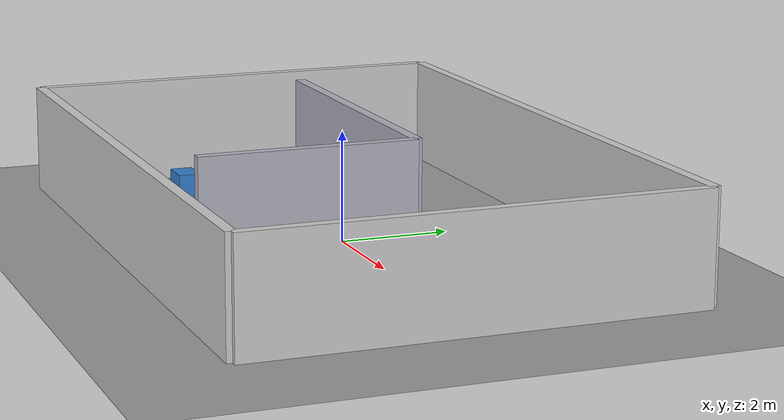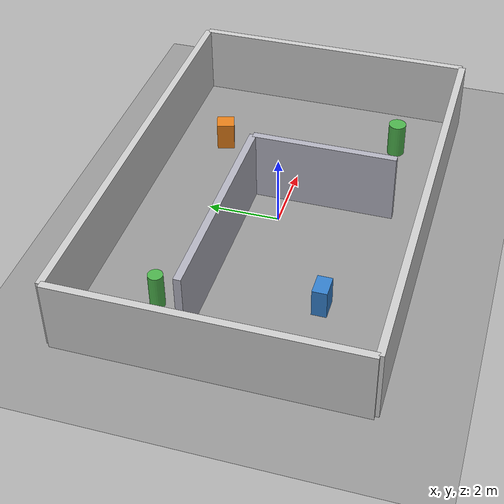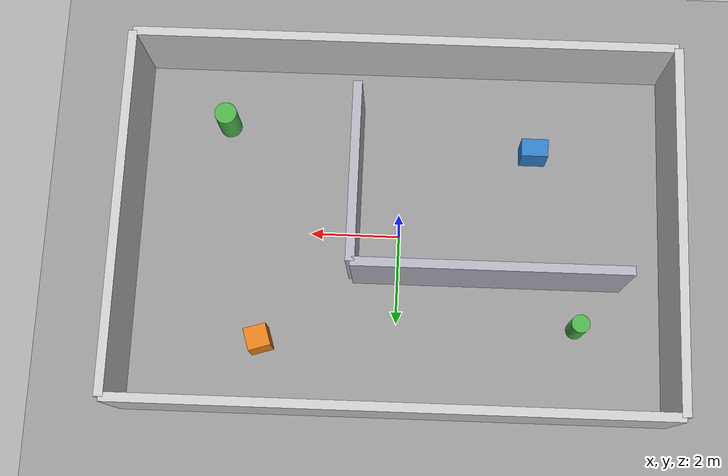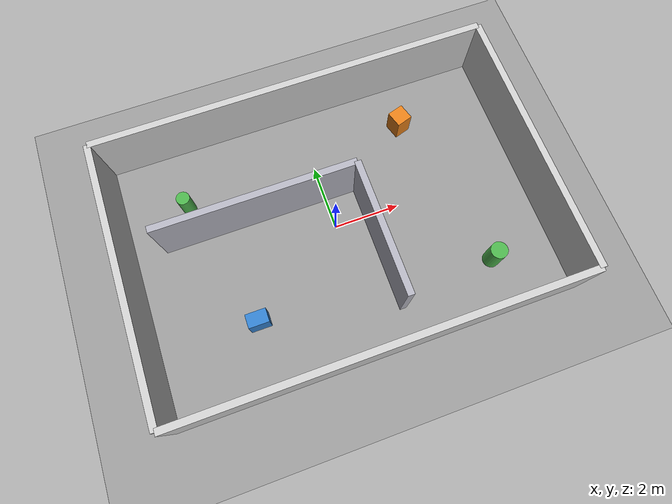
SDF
<?xml version="1.0" ?>
<sdf version="1.9">
  <world name="agv_warehouse">

    <physics name="1ms" type="ignored">
      <max_step_size>0.001</max_step_size>
      <real_time_factor>1.0</real_time_factor>
    </physics>

    <plugin filename="gz-sim-physics-system" name="gz::sim::systems::Physics"/>
    <plugin filename="gz-sim-sensors-system" name="gz::sim::systems::Sensors">
      <render_engine>ogre2</render_engine>
    </plugin>
    <plugin filename="gz-sim-scene-broadcaster-system" name="gz::sim::systems::SceneBroadcaster"/>
    <plugin filename="gz-sim-user-commands-system" name="gz::sim::systems::UserCommands"/>
    <plugin filename="gz-sim-imu-system" name="gz::sim::systems::Imu"/>

    <light type="directional" name="sun">
      <cast_shadows>true</cast_shadows>
      <pose>0 0 10 0 0 0</pose>
      <diffuse>0.9 0.9 0.9 1</diffuse>
      <specular>0.2 0.2 0.2 1</specular>
      <direction>-0.4 0.2 -0.9</direction>
    </light>

    <model name="ground_plane">
      <static>true</static>
      <link name="link">
        <collision name="collision">
          <geometry><plane><normal>0 0 1</normal><size>40 40</size></plane></geometry>
          <surface><friction><ode><mu>0.9</mu><mu2>0.9</mu2></ode></friction></surface>
        </collision>
        <visual name="visual">
          <geometry><plane><normal>0 0 1</normal><size>40 40</size></plane></geometry>
          <material><ambient>0.6 0.6 0.6 1</ambient><diffuse>0.6 0.6 0.6 1</diffuse></material>
        </visual>
      </link>
    </model>

    <!-- ===== Reusable wall macro-ish: each wall is a static box ===== -->

    <!-- Outer perimeter: 12m x 8m room -->
    <model name="wall_outer_north"><static>true</static>
      <pose>0 4 1 0 0 0</pose>
      <link name="link">
        <collision name="c"><geometry><box><size>12 0.2 2</size></box></geometry></collision>
        <visual name="v"><geometry><box><size>12 0.2 2</size></box></geometry>
          <material><ambient>0.8 0.8 0.8 1</ambient></material></visual>
      </link>
    </model>
    <model name="wall_outer_south"><static>true</static>
      <pose>0 -4 1 0 0 0</pose>
      <link name="link">
        <collision name="c"><geometry><box><size>12 0.2 2</size></box></geometry></collision>
        <visual name="v"><geometry><box><size>12 0.2 2</size></box></geometry>
          <material><ambient>0.8 0.8 0.8 1</ambient></material></visual>
      </link>
    </model>
    <model name="wall_outer_east"><static>true</static>
      <pose>6 0 1 0 0 1.5708</pose>
      <link name="link">
        <collision name="c"><geometry><box><size>8 0.2 2</size></box></geometry></collision>
        <visual name="v"><geometry><box><size>8 0.2 2</size></box></geometry>
          <material><ambient>0.8 0.8 0.8 1</ambient></material></visual>
      </link>
    </model>
    <model name="wall_outer_west"><static>true</static>
      <pose>-6 0 1 0 0 1.5708</pose>
      <link name="link">
        <collision name="c"><geometry><box><size>8 0.2 2</size></box></geometry></collision>
        <visual name="v"><geometry><box><size>8 0.2 2</size></box></geometry>
          <material><ambient>0.8 0.8 0.8 1</ambient></material></visual>
      </link>
    </model>

    <!-- Inner dividing wall creating a corridor + turn (L-shape) -->
    <model name="wall_inner_1"><static>true</static>
      <pose>-2 1 1 0 0 0</pose>
      <link name="link">
        <collision name="c"><geometry><box><size>6 0.2 2</size></box></geometry></collision>
        <visual name="v"><geometry><box><size>6 0.2 2</size></box></geometry>
          <material><ambient>0.7 0.7 0.75 1</ambient></material></visual>
      </link>
    </model>
    <model name="wall_inner_2"><static>true</static>
      <pose>1 -1 1 0 0 1.5708</pose>
      <link name="link">
        <collision name="c"><geometry><box><size>4 0.2 2</size></box></geometry></collision>
        <visual name="v"><geometry><box><size>4 0.2 2</size></box></geometry>
          <material><ambient>0.7 0.7 0.75 1</ambient></material></visual>
      </link>
    </model>

    <!-- Freestanding obstacles for LiDAR returns / loop-closure landmarks -->
    <model name="box_obstacle_1"><static>true</static>
      <pose>3 2.5 0.4 0 0 0.3</pose>
      <link name="link">
        <collision name="c"><geometry><box><size>0.5 0.5 0.8</size></box></geometry></collision>
        <visual name="v"><geometry><box><size>0.5 0.5 0.8</size></box></geometry>
          <material><ambient>0.9 0.5 0.1 1</ambient></material></visual>
      </link>
    </model>
    <model name="box_obstacle_2"><static>true</static>
      <pose>-3 -2 0.4 0 0 0</pose>
      <link name="link">
        <collision name="c"><geometry><box><size>0.6 0.4 0.8</size></box></geometry></collision>
        <visual name="v"><geometry><box><size>0.6 0.4 0.8</size></box></geometry>
          <material><ambient>0.2 0.5 0.8 1</ambient></material></visual>
      </link>
    </model>
    <model name="cylinder_obstacle_1"><static>true</static>
      <pose>4 -2.5 0.5 0 0 0</pose>
      <link name="link">
        <collision name="c"><geometry><cylinder><radius>0.25</radius><length>1.0</length></cylinder></geometry></collision>
        <visual name="v"><geometry><cylinder><radius>0.25</radius><length>1.0</length></cylinder></geometry>
          <material><ambient>0.3 0.7 0.3 1</ambient></material></visual>
      </link>
    </model>
    <model name="cylinder_obstacle_2"><static>true</static>
      <pose>-4 2 0.5 0 0 0</pose>
      <link name="link">
        <collision name="c"><geometry><cylinder><radius>0.2</radius><length>1.0</length></cylinder></geometry></collision>
        <visual name="v"><geometry><cylinder><radius>0.2</radius><length>1.0</length></cylinder></geometry>
          <material><ambient>0.3 0.7 0.3 1</ambient></material></visual>
      </link>
    </model>

  </world>
</sdf>
